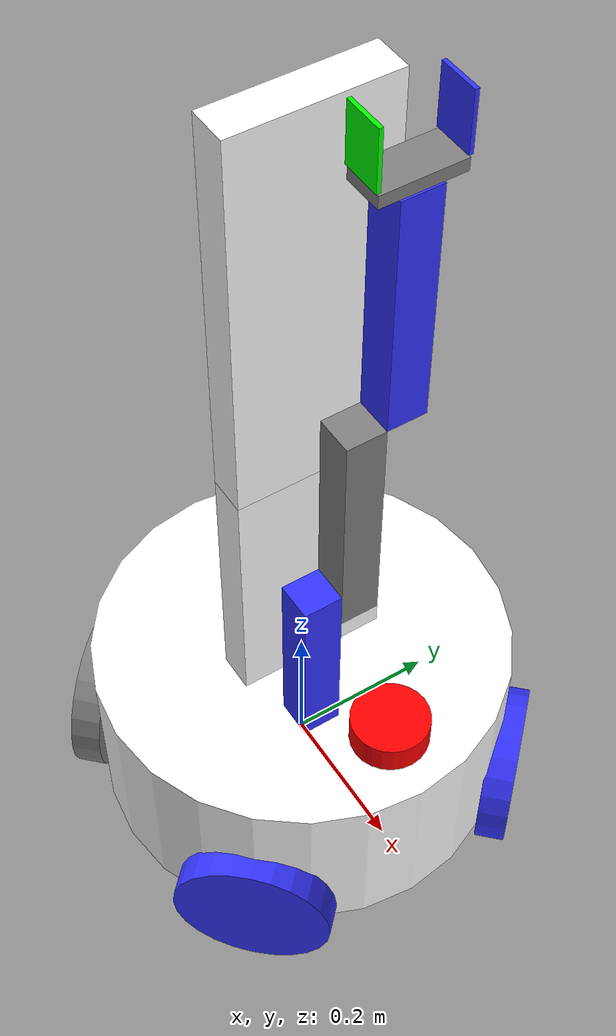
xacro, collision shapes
<?xml version="1.0"?>
<robot xmlns:xacro="http://www.ros.org/wiki/xacro"  name="robot">

    <xacro:include filename='gazebo_control.xacro'/>

    <xacro:include filename='robot_core.xacro'/>
    <xacro:include filename='robot_wheels.xacro'/>

    <xacro:include filename='lidar.xacro'/>
    <xacro:include filename='depth_camera.xacro'/>

    <xacro:include filename='manipulator.xacro'/>

</robot>

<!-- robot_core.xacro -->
<robot xmlns:xacro="http://www.ros.org/wiki/xacro" >

    <xacro:include filename="inertial_macros.xacro"/>
    <xacro:include filename='ros2_control.xacro'/>

    <material name="white">
        <color rgba="1 1 1 1"/>
    </material>
    <material name="blue">
        <color rgba="0.2 0.2 1 1"/>
    </material>
    <material name="black">
        <color rgba="0 0 0 1"/>
    </material>
    <material name="red">
        <color rgba="1 0 0 1"/>
    </material>
    <material name="grey">
        <color rgba="0.5 0.5 0.5 1"/>
    </material>
    <material name="green">
        <color rgba="0 1 0 1"/>
        <friction value='5.0'/>
    </material>

    <!--BASE LINK-->
    <link name="base_link">
    </link>

    <!--BASE FOOTPRINT-->
    <joint name="base_footprint_joint" type="fixed">
        <parent link="base_link"/>
        <child link="base_footprint"/>
        <origin xyz="0 0 0" rpy="0 0 0"/>
    </joint>

    <link name="base_footprint">
    </link>

    <!--CHASSI-->
    <joint name="chassi_joint" type="fixed">
        <parent link="base_link"/>
        <child link="chassi_link"/>
        <origin xyz="0 0 0.082" rpy="0 0 0"/>
    </joint>

    <link name="chassi_link">
        <visual>
            <origin xyz="0 0 0"/>
            <geometry>
                <cylinder radius="0.275" length="0.25"/>
            </geometry>
            <material name="white"/>
        </visual>
        <collision>
            <origin xyz="0 0 0"/>
            <geometry>
                <cylinder radius="0.275" length="0.25"/>
            </geometry>
        </collision>
        <xacro:inertial_cylinder mass="100.0" length="0.25" radius="0.275">
            <origin xyz="0 0 0" rpy="0 0 0"/>
        </xacro:inertial_cylinder>
    </link>

    <gazebo reference="chassi_link">
        <material>Gazebo/White</material>
    </gazebo>

    <!--LOWER BODY-->
    <joint name="lower_body_joint" type="fixed">
        <parent link="base_link"/>
        <child link="lower_body_link"/>
        <origin xyz="0 0 0.2" rpy="0 0 0"/>
    </joint>

    <link name="lower_body_link">
        <visual>
            <origin xyz="0 0 0.18" rpy="0 0 ${pi/2}"/>
            <geometry>
                <box size="0.2 0.05 0.35"/>
            </geometry>
            <material name="white"/>
        </visual>
        <collision>
            <origin xyz="0 0 0.18" rpy="0 0 ${pi/2}"/>
            <geometry>
                <box size="0.2 0.05 0.35"/>
            </geometry>
        </collision>
        <xacro:inertial_box mass="0.1" x="0.2" y="0.05" z="0.35">
            <origin xyz="0 0 0.18" rpy="0 0 0"/>
        </xacro:inertial_box>
    </link>

    <gazebo reference="lower_body_link">
        <material>Gazebo/White</material>
    </gazebo>

    <!--UPPER BODY-->
    <joint name="upper_body_joint" type="fixed">
        <parent link="lower_body_link"/>
        <child link="upper_body_link"/>
        <origin xyz="0 0 0.355" rpy="0 0 0"/>
    </joint>

    <link name="upper_body_link">
        <visual>
            <origin xyz="0 0 0.25" rpy="0 0 ${pi/2}"/>
            <geometry>
                <box size="0.2 0.05 0.50"/>
            </geometry>
            <material name="white"/>
        </visual>
        <collision>
            <origin xyz="0 0 0.25" rpy="0 0 ${pi/2}"/>
            <geometry>
                <box size="0.2 0.05 0.50"/>
            </geometry>
        </collision>
        <xacro:inertial_box mass="0.03" x="0.2" y="0.05" z="0.50">
            <origin xyz="0 0 0.25" rpy="0 0 0"/>
        </xacro:inertial_box>
    </link>

    <gazebo reference="upper_body_link">
        <material>Gazebo/White</material>
    </gazebo>

</robot>

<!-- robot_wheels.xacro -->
<robot xmlns:xacro="http://www.ros.org/wiki/xacro">

    <xacro:include filename="inertial_macros.xacro"/>

    <!--WHEELS-->

    <!--LEFT FRONT-->
    <joint name="left_front_joint" type="fixed">
        <parent link="base_link"/>
        <child link="left_front_link"/>
        <origin xyz="0.2 0.2 0" rpy="-${pi/2} 0 -${pi/4}"/>
    </joint>

    <link name="left_front_link">
        <visual>
            <geometry>
                <mesh filename="file://$(find charmie_bot)/description/meshes/omni_wheel.stl" scale="0.001 0.001 0.001"/>
            </geometry>
            <material name="blue"/>
        </visual>
        <collision>
            <geometry>
                <cylinder radius="0.105" length="0.04"/>
            </geometry>
        </collision>
        <xacro:inertial_cylinder mass="0.1" length="0.04" radius="0.105">
            <origin xyz="0 0 0" rpy="0 0 0"/>
        </xacro:inertial_cylinder>
    </link>

    <gazebo reference="left_front_link">
        <material>Gazebo/Blue</material>
        <mu1 value="0.001"/>
        <mu2 value="0.001"/>
    </gazebo>

    <!--LEFT BACK-->
    <joint name="left_back_joint" type="fixed">
        <parent link="base_link"/>
        <child link="left_back_link"/>
        <origin xyz="-0.2 0.2 0" rpy="0 -${pi/2} -${pi/4}"/>
    </joint>

    <link name="left_back_link">
        <visual>
            <geometry>
                <mesh filename="file://$(find charmie_bot)/description/meshes/omni_wheel.stl" scale="0.001 0.001 0.001"/>
            </geometry>
            <material name="grey"/>
        </visual>
        <collision>
            <geometry>
                <cylinder radius="0.105" length="0.04"/>
            </geometry>
        </collision>
        <xacro:inertial_cylinder mass="0.1" length="0.04" radius="0.105">
            <origin xyz="0 0 0" rpy="0 0 0"/>
        </xacro:inertial_cylinder>
    </link>

    <gazebo reference="left_back_link">
        <material>Gazebo/Grey</material>
        <mu1 value="0.001"/>
        <mu2 value="0.001"/>
    </gazebo>

    <!--RIGHT FRONT-->
    <joint name="right_front_joint" type="fixed">
        <parent link="base_link"/>
        <child link="right_front_link"/>
        <origin xyz="0.2 -0.2 0" rpy="0 ${pi/2} -${pi/4}"/>
    </joint>

    <link name="right_front_link">
        <visual>
            <geometry>
                <mesh filename="file://$(find charmie_bot)/description/meshes/omni_wheel.stl" scale="0.001 0.001 0.001"/>
            </geometry>
            <material name="blue"/>
        </visual>
        <collision>
            <geometry>
                <cylinder radius="0.105" length="0.04"/>
            </geometry>
        </collision>
        <xacro:inertial_cylinder mass="0.1" length="0.04" radius="0.105">
            <origin xyz="0 0 0" rpy="0 0 0"/>
        </xacro:inertial_cylinder>
    </link>

    <gazebo reference="right_front_link">
        <material>Gazebo/Blue</material>
        <mu1 value="0.001"/>
        <mu2 value="0.001"/>
    </gazebo>

    <!--RIGHT BACK-->
    <joint name="right_back_joint" type="fixed">
        <parent link="base_link"/>
        <child link="right_back_link"/>
        <origin xyz="-0.2 -0.2 0" rpy="${pi/2} 0 -${pi/4}"/>
    </joint>

    <link name="right_back_link">
        <visual>
            <geometry>
                <mesh filename="file://$(find charmie_bot)/description/meshes/omni_wheel.stl" scale="0.001 0.001 0.001"/>
            </geometry>
            <material name="grey"/>
        </visual>
        <collision>
            <geometry>
                <cylinder radius="0.105" length="0.04"/>
            </geometry>
        </collision>
        <xacro:inertial_cylinder mass="0.1" length="0.04" radius="0.105">
            <origin xyz="0 0 0" rpy="0 0 0"/>
        </xacro:inertial_cylinder>
    </link>

    <gazebo reference="right_back_link">
        <material>Gazebo/Grey</material>
        <mu1 value="0.001"/>
        <mu2 value="0.001"/>
    </gazebo>

</robot>

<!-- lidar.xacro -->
<robot xmlns:xacro="http://www.ros.org/wiki/xacro" >

    <joint name="laser_joint" type="fixed">
        <parent link="chassi_link"/>
        <child link="laser_frame"/>
        <origin xyz="0.2 0 0.177" rpy="0 0 0"/>
    </joint>

    <link name="laser_frame">
        <visual>
            <origin xyz="0 0 -0.055" rpy="${pi/2} 0 ${pi}"/>
            <geometry>
                <mesh filename="file://$(find charmie_bot)/description/meshes/lidar.stl" scale="0.001 0.001 0.001"/>
            </geometry>
            <material name="red"/>
        </visual>
        <collision>
            <geometry>
                <cylinder radius="0.05" length="0.04"/>
            </geometry>
        </collision>
        <xacro:inertial_cylinder mass="0.1" length="0.04" radius="0.05">
            <origin xyz="0 0 0" rpy="0 0 0"/>
        </xacro:inertial_cylinder>
    </link>

    <!-- hokuyo -->
    <gazebo reference="laser_frame">
        <material>Gazebo/Red</material>
        <sensor type="ray" name="head_hokuyo_sensor">
            <pose> 0 0 0.055 0 0 0 </pose>
            <visualize>true</visualize>
            <update_rate>40</update_rate>
            <ray>
                <scan>
                    <horizontal>
                        <samples>681</samples>
                        <min_angle>-2.092387973753402</min_angle>
                        <max_angle>2.092387973753402</max_angle>
                    </horizontal>
                </scan>
                <range>
                    <min>0.2</min>
                    <max>5.6</max>
                </range>
            </ray>
            <plugin name="laser_controller" filename="libgazebo_ros_ray_sensor.so">
                <ros>
                    <argument>~/out:=scan</argument>
                </ros>
                <output_type>sensor_msgs/LaserScan</output_type>
                <frame_name>laser_frame</frame_name>
            </plugin>
        </sensor>
    </gazebo>

</robot>

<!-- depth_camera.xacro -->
<robot xmlns:xacro="http://www.ros.org/wiki/xacro">

    <joint name="neck_joint" type="fixed">
        <parent link="upper_body_link"/>
        <child link="neck_link"/>
        <origin xyz="0.045 0 0.5" rpy="0 0 0"/>
    </joint>

    <link name="neck_link">
        <xacro:inertial_box mass="0.1" x="0" y="0" z="0">
            <origin xyz="0 0 0" rpy="0 0 0"/>
        </xacro:inertial_box>
    </link>

    <joint name="camera_joint_z" type="revolute">
        <parent link="neck_link"/>
        <child link="camera_link_z"/>
        <origin xyz="0 0 0" rpy="0 0 0"/>
        <axis xyz="0 1 0"/>
        <limit effort="1000.0" lower="0.0" upper="0.548" velocity="0.5"/>
    </joint>

    <link name="camera_link_z">
        <xacro:inertial_box mass="0.1" x="0" y="0" z="0">
            <origin xyz="0 0 0" rpy="0 0 0"/>
        </xacro:inertial_box>
    </link>

    <joint name="camera_joint_y" type="revolute">
        <parent link="camera_link_z"/>
        <child link="camera_link_y"/>
        <origin xyz="0 0 0" rpy="0 0 0"/>
        <axis xyz="0 0 1"/>
        <limit effort="1000.0" lower="-0.548" upper="0.548" velocity="0.5"/>
    </joint>

    <link name="camera_link_y">
        <xacro:inertial_box mass="0.1" x="0" y="0" z="0">
            <origin xyz="0 0 0" rpy="0 0 0"/>
        </xacro:inertial_box>
    </link>

    <joint name="camera_joint" type="fixed">
        <parent link="camera_link_y"/>
        <child link="camera_link"/>
        <origin xyz="0 0 0" rpy="0 0 0"/>
    </joint>

    <link name="camera_link">
        <visual>
            <geometry>
                <box size="0.04 0.07 0.04"/>
            </geometry>
            <material name="red"/>
        </visual>
        <xacro:inertial_box mass="0.1" x="0.04" y="0.07" z="0.04">
            <origin xyz="0 0 0" rpy="0 0 0"/>
        </xacro:inertial_box>
    </link>

    <joint name="camera_optical_joint" type="fixed">
        <parent link="camera_link"/>
        <child link="camera_link_optical"/>
        <origin xyz="0 0 0" rpy="${-pi/2} 0 ${-pi/2}"/>
    </joint>

    <link name="camera_link_optical">
        <xacro:inertial_box mass="0.1" x="0" y="0" z="0">
            <origin xyz="0 0 0" rpy="0 0 0"/>
        </xacro:inertial_box>
    </link>

    <gazebo reference="camera_link">
        <material>Gazebo/Red</material>

        <sensor name="camera" type="depth">
            <pose> 0 0 0 0 0 0 </pose>
            <visualize>true</visualize>
            <update_rate>10</update_rate>
            <camera>
                <horizontal_fov>1.089</horizontal_fov>
                <image>
                    <format>B8G8R8</format>
                    <width>640</width>
                    <height>480</height>
                </image>
                <clip>
                    <near>0.4</near>
                    <far>6.0</far>
                </clip>
            </camera>
            <plugin name="camera_controller" filename="libgazebo_ros_camera.so">
                <frame_name>camera_link_optical</frame_name>
                <min_depth>0.1</min_depth>
                <max_depth>100.0</max_depth>
            </plugin>
        </sensor>
    </gazebo>

</robot>

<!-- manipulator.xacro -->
<robot xmlns:xacro="http://www.ros.org/wiki/xacro">

    <xacro:include filename="inertial_macros.xacro"/>

    <!-- ARM -->
    <!--base-->
    <joint name="base_joint_z" type="revolute">
        <parent link="chassi_link"/>
        <child link="base_mn_link"/>
        <origin xyz="0.1 -0.05 0.12" rpy="0 0 0"/>
        <axis xyz="0 0 1"/>
        <limit effort="1000.0" lower="-1.5708" upper="1.5708" velocity="0.5"/>
    </joint>

    <link name="base_mn_link">
        <xacro:inertial_box mass="0.1" x="0.05" y="0.05" z="0.1">
            <origin xyz="0 0 0" rpy="0 0 0"/>
        </xacro:inertial_box>
    </link>

    <!--link1-->
    <joint name="mn_joint1" type="fixed">
        <parent link="base_mn_link"/>
        <child link="mn_link1"/>
        <origin xyz="0 0 0" rpy="0 0 0"/>
    </joint>

    <link name="mn_link1">
        <visual>
            <origin xyz="0 0 0.125" rpy="0 0 ${pi/2}"/>
            <geometry>
                <box size="0.05 0.05 0.25"/>
            </geometry>
            <material name="blue"/>
        </visual>
        <collision>
            <origin xyz="0 0 0.125" rpy="0 0 ${pi/2}"/>
            <geometry>
                <box size="0.05 0.05 0.25"/>
            </geometry>
        </collision>
        <xacro:inertial_box mass="0.1" x="0.05" y="0.05" z="0.25">
            <origin xyz="0 0 0.125" rpy="0 0 0"/>
        </xacro:inertial_box>
    </link>

    <gazebo reference="mn_link1">
        <material>Gazebo/Blue</material>
    </gazebo>

    <!--link2-->
    <joint name="mn_joint2" type="revolute">
        <parent link="mn_link1"/>
        <child link="mn_link2"/>
        <origin xyz="0 0.05 0.2" rpy="0 0 0"/>
        <axis xyz="0 1 0"/>
        <limit effort="1000.0" lower="0.0" upper="1.5708" velocity="0.5"/>
    </joint>

    <link name="mn_link2">
        <visual>
            <origin xyz="0 0 0.15" rpy="0 0 ${pi/2}"/>
            <geometry>
                <box size="0.05 0.05 0.3"/>
            </geometry>
            <material name="grey"/>
        </visual>
        <collision>
            <origin xyz="0 0 0.15" rpy="0 0 ${pi/2}"/>
            <geometry>
                <box size="0.05 0.05 0.3"/>
            </geometry>
        </collision>
        <xacro:inertial_box mass="0.1" x="0.05" y="0.05" z="0.3">
            <origin xyz="0 0 0.15" rpy="0 0 0"/>
        </xacro:inertial_box>
    </link>

    <gazebo reference="mn_link2">
        <material>Gazebo/Grey</material>
    </gazebo>

    <!--link3-->
    <joint name="mn_joint3" type="revolute">
        <parent link="mn_link2"/>
        <child link="mn_link3"/>
        <origin xyz="0 0.05 0.3" rpy="0 0 0"/>
        <axis xyz="0 0 1"/>
        <limit effort="1000.0" lower="0.0" upper="1.5708" velocity="0.5"/>
    </joint>

    <link name="mn_link3">
        <xacro:inertial_box mass="0.1" x="0.05" y="0.05" z="0.1">
            <origin xyz="0 0 0" rpy="0 0 0"/>
        </xacro:inertial_box>
    </link>

    <!--link4-->
    <joint name="mn_joint4" type="revolute">
        <parent link="mn_link3"/>
        <child link="mn_link4"/>
        <origin xyz="0 0 0" rpy="0 0 0"/>
        <axis xyz="0 1 0"/>
        <limit effort="1000.0" lower="0.0" upper="1.5708" velocity="0.5"/>
    </joint>

    <link name="mn_link4">
        <visual>
            <origin xyz="0 0 0.15" rpy="0 0 ${pi/2}"/>
            <geometry>
                <box size="0.05 0.05 0.3"/>
            </geometry>
            <material name="blue"/>
        </visual>
        <collision>
            <origin xyz="0 0 0.15" rpy="0 0 ${pi/2}"/>
            <geometry>
                <box size="0.05 0.05 0.3"/>
            </geometry>
        </collision>
        <xacro:inertial_box mass="0.1" x="0.05" y="0.05" z="0.3">
            <origin xyz="0 0 0.15" rpy="0 0 0"/>
        </xacro:inertial_box>
    </link>

    <gazebo reference="mn_link4">
        <material>Gazebo/Blue</material>
    </gazebo>

    <!--end effector-->
    <joint name="mn_joint5" type="revolute">
        <parent link="mn_link4"/>
        <child link="mn_link5"/>
        <origin xyz="0 0 0.31" rpy="0 0 0"/>
        <axis xyz="0 0 1"/>
        <limit effort="1000.0" lower="0.0" upper="1.5708" velocity="0.5"/>
    </joint>

    <link name="mn_link5">
        <visual>
            <origin xyz="0 0 0" rpy="0 0 ${pi/2}"/>
            <geometry>
                <box size="0.1 0.05 0.015"/>
            </geometry>
            <material name="grey"/>
        </visual>
        <collision>
            <origin xyz="0 0 0" rpy="0 0 ${pi/2}"/>
            <geometry>
                <box size="0.1 0.05 0.015"/>
            </geometry>
        </collision>
        <xacro:inertial_box mass="0.1" x="0.1" y="0.05" z="0.015">
            <origin xyz="0 0 0" rpy="0 0 0"/>
        </xacro:inertial_box>
    </link>

    <gazebo reference="mn_link5">
        <material>Gazebo/Grey</material>
    </gazebo>

    <joint name="end_fixed_obj" type="fixed">
        <parent link="mn_link5"/>
        <child link="coke_obj"/>
        <origin xyz="0.22 0.01 0.045" rpy="0 -${pi/2} 0"/>
    </joint>

    <link name="coke_obj">
        <visual>
            <geometry>
                <mesh filename="model://coke_can/meshes/coke_can.dae"/>
            </geometry>
        </visual>
        <xacro:inertial_box mass="0.1" x="0.1" y="0.1" z="0.1">
            <origin xyz="0 0 0" rpy="0 0 0"/>
        </xacro:inertial_box>
    </link>

    <!--left gripper-->
    <joint name="left_gripper_joint" type="prismatic">
        <parent link="mn_link5"/>
        <child link="left_gripper_link"/>
        <origin xyz="0.0 0.05 0.045" rpy="0 0 0"/>
        <axis xyz="0 -1 0"/>
        <limit effort="100" lower="0.0" upper="0.03" velocity="100"/>
    </joint>

    <transmission name="left_gripper_tr">
        <type>transmission_interface/SimpleTransmission</type>
        <joint name="left_gripper_joint">
            <hardwareInterface>hardware_interface/EffortJointInterface</hardwareInterface>
        </joint>
        <actuator name="motor_left_gripper">
            <hardwareInterface>hardware_interface/EffortJointInterface</hardwareInterface>
            <mechanicalReduction>1</mechanicalReduction>
        </actuator>
    </transmission>

    <link name="left_gripper_link">
        <visual>
            <origin xyz="0 0 0" rpy="0 0 ${pi/2}"/>
            <geometry>
                <box size="0.005 0.05 0.07"/>
            </geometry>
            <material name="blue"/>
        </visual>
        <collision>
            <origin xyz="0 0 0" rpy="0 0 ${pi/2}"/>
            <geometry>
                <box size="0.005 0.05 0.07"/>
            </geometry>
            <material name="green"/>
        </collision>
        <xacro:inertial_box mass="0.1" x="0.005" y="0.05" z="0.07">
            <origin xyz="0 0 0" rpy="0 0 0"/>
        </xacro:inertial_box>
    </link>

    <gazebo reference="left_gripper_link">
        <material>Gazebo/Blue</material>
        <dynamics damping="100" friction="200"/>
    </gazebo>

    <!--right gripper-->
    <joint name="right_gripper_joint" type="prismatic">
        <parent link="mn_link5"/>
        <child link="right_gripper_link"/>
        <origin xyz="0 -0.05 0.045" rpy="0 0 0"/>
        <axis xyz="0 1 0"/>
        <limit effort="100" lower="0.0" upper="0.03" velocity="100"/>
        <mimic joint="left_gripper_joint" multiplier="1.0" offset="0" />
    </joint>

    <transmission name="right_gripper_tr">
        <type>transmission_interface/SimpleTransmission</type>
        <joint name="right_gripper_joint">
            <hardwareInterface>hardware_interface/EffortJointInterface</hardwareInterface>
        </joint>
        <actuator name="motor_right_gripper">
            <hardwareInterface>hardware_interface/EffortJointInterface</hardwareInterface>
            <mechanicalReduction>1</mechanicalReduction>
        </actuator>
    </transmission>

    <link name="right_gripper_link">
        <visual>
            <origin xyz="0 0 0" rpy="0 0 ${pi/2}"/>
            <geometry>
                <box size="0.005 0.05 0.07"/>
            </geometry>
            <material name="green"/>
        </visual>
        <collision>
            <origin xyz="0 0 0" rpy="0 0 ${pi/2}"/>
            <geometry>
                <box size="0.005 0.05 0.07"/>
            </geometry>
            <material name="green"/>
        </collision>
        <xacro:inertial_box mass="0.1" x="0.005" y="0.05" z="0.07">
            <origin xyz="0 0 0" rpy="0 0 0"/>
        </xacro:inertial_box>
    </link>

    <gazebo reference="right_gripper_link">
        <material>Gazebo/Green</material>
        <dynamics damping="100" friction="200"/>
    </gazebo>

    <!--ROS PLUGIN-->

    <gazebo>
        <plugin name="mimic_joint_plugin" filename="libroboticsgroup_gazebo_mimic_joint_plugin.so">
            <joint>left_gripper_joint</joint>
            <mimicJoint>right_gripper_joint</mimicJoint>
            <multiplier>-1.0</multiplier>
            <offset>1</offset>
            <maxEffort>100.0</maxEffort>
        </plugin>
    </gazebo>

    <gazebo>
        <plugin name="gazebo_grasp_fix" filename="libgazebo_grasp_fix.so">
            <arm>
                <arm_name>gripper</arm_name>
                <palm_link>mn_link5</palm_link>
                <gripper_link>left_gripper_joint</gripper_link>
                <gripper_link>right_gripper_joint</gripper_link>
            </arm>
            <forces_angle_tolerance>100</forces_angle_tolerance>
            <update_rate>10</update_rate>
            <grip_count_threshold>3</grip_count_threshold>
            <max_grip_count>10</max_grip_count>
            <release_tolerance>0.001</release_tolerance>
            <disable_collisions_on_attach>false</disable_collisions_on_attach>
            <contact_topic>/contact</contact_topic>
        </plugin>
    </gazebo>

</robot>
